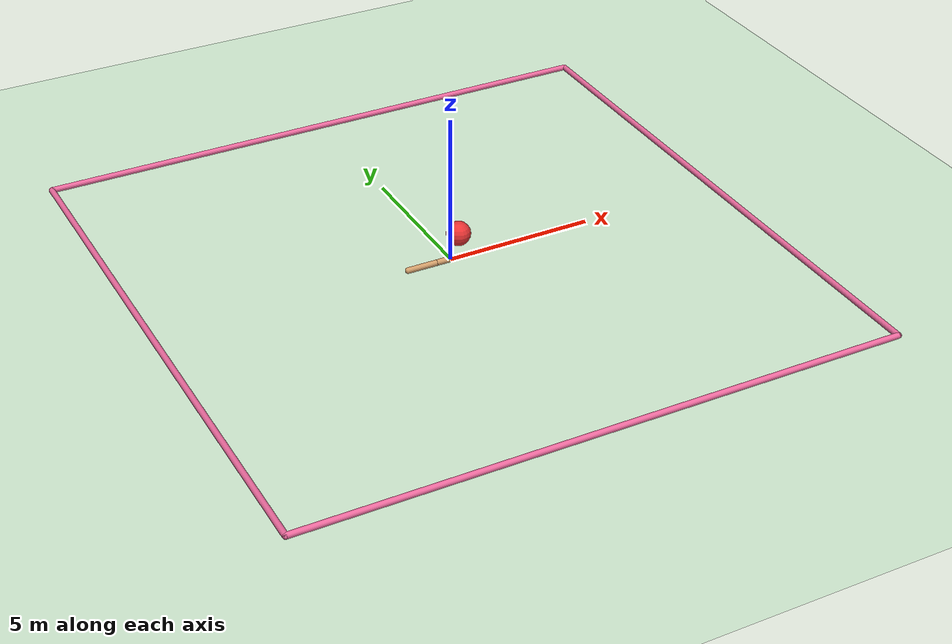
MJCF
<mujoco model="swimmer">
  <compiler angle="degree" coordinate="local" inertiafromgeom="true"/>
  <option collision="predefined" density="4000" integrator="RK4" timestep="0.01" viscosity="0.1"/>
  <default>
    <geom conaffinity="1" condim="1" contype="1" material="geom" rgba="0.8 0.6 .4 1"/>
    <joint armature='0.1'  />
  </default>
  <asset>
    <texture builtin="gradient" height="100" rgb1="1 1 1" rgb2="0 0 0" type="skybox" width="100"/>
    <texture builtin="flat" height="1278" mark="cross" markrgb="1 1 1" name="texgeom" random="0.01" rgb1="0.8 0.6 0.4" rgb2="0.8 0.6 0.4" type="cube" width="127"/>
    <texture builtin="checker" height="100" name="texplane" rgb1="0 0 0" rgb2="0.8 0.8 0.8" type="2d" width="100"/>
    <material name="MatPlane" reflectance="0.5" shininess="1" specular="1" texrepeat="30 30" texture="texplane"/>
    <material name="geom" texture="texgeom" texuniform="true"/>
  </asset>
  <worldbody>
		<geom conaffinity="0" fromto="-10 -10 .01 10 -10 .01" name="sideS" rgba="0.9 0.4 0.6 1" size="0.1" type="capsule"/>
		<geom conaffinity="0" fromto=" 10 -10 .01 10  10 .01" name="sideE" rgba="0.9 0.4 0.6 1" size="0.1" type="capsule"/>
		<geom conaffinity="0" fromto="-10  10 .01 10  10 .01" name="sideN" rgba="0.9 0.4 0.6 1" size="0.1" type="capsule"/>
		<geom conaffinity="0" fromto="-10 -10 .01 -10 10 .01" name="sideW" rgba="0.9 0.4 0.6 1" size="0.1" type="capsule"/>

    <light cutoff="100" diffuse="1 1 1" dir="-0 0 -1.3" directional="true" exponent="1" pos="0 0 1.3" specular=".1 .1 .1"/>
    <geom conaffinity="1" condim="3" material="MatPlane" name="floor" pos="0 0 -0.1" rgba="0.8 0.9 0.8 1" size="40 40 0.1" type="plane"/>
    <!--  ================= SWIMMER ================= /-->
    <body name="torso" pos="0 0 0">
      <geom density="1000" fromto="1.5 0 0 0.5 0 0" size="0.1" type="capsule"/>
      <joint axis="1 0 0" name="slider1" pos="0 0 0" type="slide"/>
      <joint axis="0 1 0" name="slider2" pos="0 0 0" type="slide"/>
      <joint axis="0 0 1" name="rot" pos="0 0 0" type="hinge"/>
      <body name="mid" pos="0.5 0 0">
        <geom density="1000" fromto="0 0 0 -1 0 0" size="0.1" type="capsule"/>
        <joint axis="0 0 1" limited="true" name="rot2" pos="0 0 0" range="-100 100" type="hinge"/>
        <body name="back" pos="-1 0 0">
          <geom density="1000" fromto="0 0 0 -1 0 0" size="0.1" type="capsule"/>
          <joint axis="0 0 1" limited="true" name="rot3" pos="0 0 0" range="-100 100" type="hinge"/>
        </body>
      </body>
    </body>
    <!-- target -->
    <body name="target" pos=".19 -.19 .01">
			<joint armature="0" axis="1 0 0" damping="0" limited="true" name="target_x" pos="0 0 0" range="-9 9" ref=".1" stiffness="0" type="slide"/>
			<joint armature="0" axis="0 1 0" damping="0" limited="true" name="target_y" pos="0 0 0" range="-9 9" ref="-.1" stiffness="0" type="slide"/>
			<geom conaffinity="0" contype="0" name="target" pos="0 0 1" rgba="0.9 0.2 0.2 1" size=".4" type="sphere"/>
		</body>
  </worldbody>
  <actuator>
    <motor ctrllimited="true" ctrlrange="-1 1" gear="150.0" joint="rot2"/>
    <motor ctrllimited="true" ctrlrange="-1 1" gear="150.0" joint="rot3"/>
  </actuator>
</mujoco>
